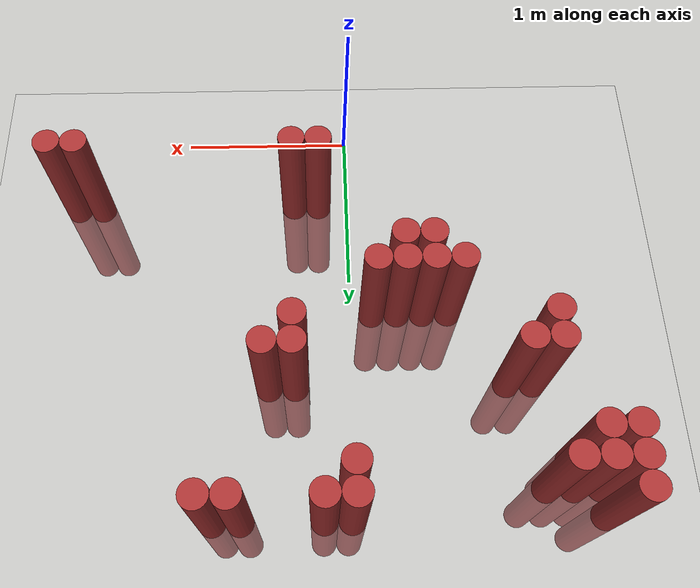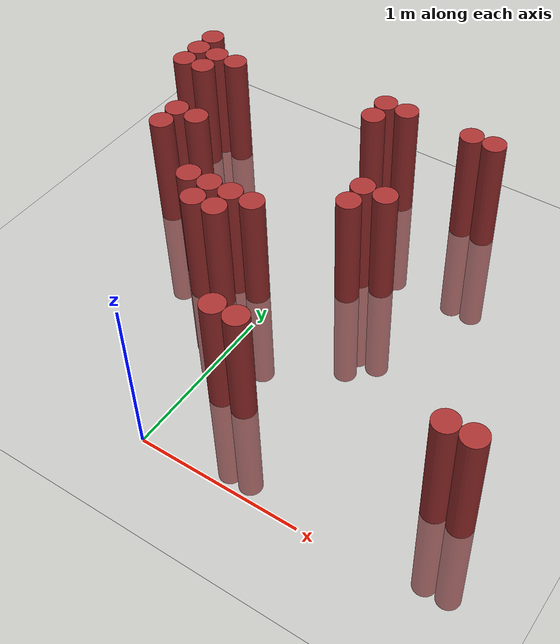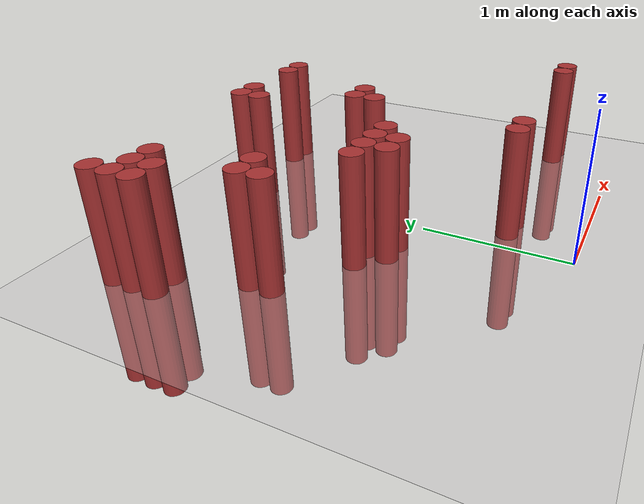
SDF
<sdf version="1.6">
 <world name="default">
  <model name="ground_plane">
   <static>1</static>
   <link name="link">
    <collision name="collision">
     <geometry><plane><normal>0 0 1</normal><size>100 100</size></plane></geometry>
     <surface><friction><ode><mu>100</mu><mu2>50</mu2></ode></friction></surface>
    </collision>
    <visual name="visual">
     <cast_shadows>0</cast_shadows>
     <geometry><plane><normal>0 0 1</normal><size>100 100</size></plane></geometry>
     <material>
      <script><uri>file://media/materials/scripts/gazebo.material</uri><name>Gazebo/Grey</name></script>
     </material>
    </visual>
   </link>
  </model>
  <model name="unit_cylinder_155">
   <static>1</static>
   <pose>-1.325000 2.125000 0.000000 0.000000 0.000000 0.000000</pose>
   <link name="link">
    <inertial>
     <mass>1</mass>
     <inertia><ixx>0.145833</ixx><ixy>0</ixy><ixz>0</ixz><iyy>0.145833</iyy><iyz>0</iyz><izz>0.125</izz></inertia>
    </inertial>
    <collision name="collision">
     <geometry><cylinder><radius>0.075000</radius><length>1.5</length></cylinder></geometry>
    </collision>
    <visual name="visual">
     <geometry><cylinder><radius>0.075000</radius><length>1.5</length></cylinder></geometry>
     <material>
      <ambient>0.648000 0.192000 0.192000 1</ambient>
      <diffuse>0.648000 0.192000 0.192000 1</diffuse>
     </material>
     <material>
      <script><name>Gazebo/Grey</name><uri>file://media/materials/scripts/gazebo.material</uri></script>
     </material>
    </visual>
   </link>
  </model>
  <model name="unit_cylinder_156">
   <static>1</static>
   <pose>-1.325000 2.275000 0.000000 0.000000 0.000000 0.000000</pose>
   <link name="link">
    <inertial>
     <mass>1</mass>
     <inertia><ixx>0.145833</ixx><ixy>0</ixy><ixz>0</ixz><iyy>0.145833</iyy><iyz>0</iyz><izz>0.125</izz></inertia>
    </inertial>
    <collision name="collision">
     <geometry><cylinder><radius>0.075000</radius><length>1.5</length></cylinder></geometry>
    </collision>
    <visual name="visual">
     <geometry><cylinder><radius>0.075000</radius><length>1.5</length></cylinder></geometry>
     <material>
      <ambient>0.648000 0.192000 0.192000 1</ambient>
      <diffuse>0.648000 0.192000 0.192000 1</diffuse>
     </material>
     <material>
      <script><name>Gazebo/Grey</name><uri>file://media/materials/scripts/gazebo.material</uri></script>
     </material>
    </visual>
   </link>
  </model>
  <model name="unit_cylinder_157">
   <static>1</static>
   <pose>-1.325000 2.425000 0.000000 0.000000 0.000000 0.000000</pose>
   <link name="link">
    <inertial>
     <mass>1</mass>
     <inertia><ixx>0.145833</ixx><ixy>0</ixy><ixz>0</ixz><iyy>0.145833</iyy><iyz>0</iyz><izz>0.125</izz></inertia>
    </inertial>
    <collision name="collision">
     <geometry><cylinder><radius>0.075000</radius><length>1.5</length></cylinder></geometry>
    </collision>
    <visual name="visual">
     <geometry><cylinder><radius>0.075000</radius><length>1.5</length></cylinder></geometry>
     <material>
      <ambient>0.648000 0.192000 0.192000 1</ambient>
      <diffuse>0.648000 0.192000 0.192000 1</diffuse>
     </material>
     <material>
      <script><name>Gazebo/Grey</name><uri>file://media/materials/scripts/gazebo.material</uri></script>
     </material>
    </visual>
   </link>
  </model>
  <model name="unit_cylinder_160">
   <static>1</static>
   <pose>-1.175000 2.125000 0.000000 0.000000 0.000000 0.000000</pose>
   <link name="link">
    <inertial>
     <mass>1</mass>
     <inertia><ixx>0.145833</ixx><ixy>0</ixy><ixz>0</ixz><iyy>0.145833</iyy><iyz>0</iyz><izz>0.125</izz></inertia>
    </inertial>
    <collision name="collision">
     <geometry><cylinder><radius>0.075000</radius><length>1.5</length></cylinder></geometry>
    </collision>
    <visual name="visual">
     <geometry><cylinder><radius>0.075000</radius><length>1.5</length></cylinder></geometry>
     <material>
      <ambient>0.648000 0.192000 0.192000 1</ambient>
      <diffuse>0.648000 0.192000 0.192000 1</diffuse>
     </material>
     <material>
      <script><name>Gazebo/Grey</name><uri>file://media/materials/scripts/gazebo.material</uri></script>
     </material>
    </visual>
   </link>
  </model>
  <model name="unit_cylinder_161">
   <static>1</static>
   <pose>-1.175000 2.275000 0.000000 0.000000 0.000000 0.000000</pose>
   <link name="link">
    <inertial>
     <mass>1</mass>
     <inertia><ixx>0.145833</ixx><ixy>0</ixy><ixz>0</ixz><iyy>0.145833</iyy><iyz>0</iyz><izz>0.125</izz></inertia>
    </inertial>
    <collision name="collision">
     <geometry><cylinder><radius>0.075000</radius><length>1.5</length></cylinder></geometry>
    </collision>
    <visual name="visual">
     <geometry><cylinder><radius>0.075000</radius><length>1.5</length></cylinder></geometry>
     <material>
      <ambient>0.648000 0.192000 0.192000 1</ambient>
      <diffuse>0.648000 0.192000 0.192000 1</diffuse>
     </material>
     <material>
      <script><name>Gazebo/Grey</name><uri>file://media/materials/scripts/gazebo.material</uri></script>
     </material>
    </visual>
   </link>
  </model>
  <model name="unit_cylinder_168">
   <static>1</static>
   <pose>-1.025000 1.525000 0.000000 0.000000 0.000000 0.000000</pose>
   <link name="link">
    <inertial>
     <mass>1</mass>
     <inertia><ixx>0.145833</ixx><ixy>0</ixy><ixz>0</ixz><iyy>0.145833</iyy><iyz>0</iyz><izz>0.125</izz></inertia>
    </inertial>
    <collision name="collision">
     <geometry><cylinder><radius>0.075000</radius><length>1.5</length></cylinder></geometry>
    </collision>
    <visual name="visual">
     <geometry><cylinder><radius>0.075000</radius><length>1.5</length></cylinder></geometry>
     <material>
      <ambient>0.648000 0.192000 0.192000 1</ambient>
      <diffuse>0.648000 0.192000 0.192000 1</diffuse>
     </material>
     <material>
      <script><name>Gazebo/Grey</name><uri>file://media/materials/scripts/gazebo.material</uri></script>
     </material>
    </visual>
   </link>
  </model>
  <model name="unit_cylinder_169">
   <static>1</static>
   <pose>-1.025000 1.675000 0.000000 0.000000 0.000000 0.000000</pose>
   <link name="link">
    <inertial>
     <mass>1</mass>
     <inertia><ixx>0.145833</ixx><ixy>0</ixy><ixz>0</ixz><iyy>0.145833</iyy><iyz>0</iyz><izz>0.125</izz></inertia>
    </inertial>
    <collision name="collision">
     <geometry><cylinder><radius>0.075000</radius><length>1.5</length></cylinder></geometry>
    </collision>
    <visual name="visual">
     <geometry><cylinder><radius>0.075000</radius><length>1.5</length></cylinder></geometry>
     <material>
      <ambient>0.648000 0.192000 0.192000 1</ambient>
      <diffuse>0.648000 0.192000 0.192000 1</diffuse>
     </material>
     <material>
      <script><name>Gazebo/Grey</name><uri>file://media/materials/scripts/gazebo.material</uri></script>
     </material>
    </visual>
   </link>
  </model>
  <model name="unit_cylinder_170">
   <static>1</static>
   <pose>-1.025000 2.275000 0.000000 0.000000 0.000000 0.000000</pose>
   <link name="link">
    <inertial>
     <mass>1</mass>
     <inertia><ixx>0.145833</ixx><ixy>0</ixy><ixz>0</ixz><iyy>0.145833</iyy><iyz>0</iyz><izz>0.125</izz></inertia>
    </inertial>
    <collision name="collision">
     <geometry><cylinder><radius>0.075000</radius><length>1.5</length></cylinder></geometry>
    </collision>
    <visual name="visual">
     <geometry><cylinder><radius>0.075000</radius><length>1.5</length></cylinder></geometry>
     <material>
      <ambient>0.648000 0.192000 0.192000 1</ambient>
      <diffuse>0.648000 0.192000 0.192000 1</diffuse>
     </material>
     <material>
      <script><name>Gazebo/Grey</name><uri>file://media/materials/scripts/gazebo.material</uri></script>
     </material>
    </visual>
   </link>
  </model>
  <model name="unit_cylinder_177">
   <static>1</static>
   <pose>-0.875000 1.675000 0.000000 0.000000 0.000000 0.000000</pose>
   <link name="link">
    <inertial>
     <mass>1</mass>
     <inertia><ixx>0.145833</ixx><ixy>0</ixy><ixz>0</ixz><iyy>0.145833</iyy><iyz>0</iyz><izz>0.125</izz></inertia>
    </inertial>
    <collision name="collision">
     <geometry><cylinder><radius>0.075000</radius><length>1.5</length></cylinder></geometry>
    </collision>
    <visual name="visual">
     <geometry><cylinder><radius>0.075000</radius><length>1.5</length></cylinder></geometry>
     <material>
      <ambient>0.648000 0.192000 0.192000 1</ambient>
      <diffuse>0.648000 0.192000 0.192000 1</diffuse>
     </material>
     <material>
      <script><name>Gazebo/Grey</name><uri>file://media/materials/scripts/gazebo.material</uri></script>
     </material>
    </visual>
   </link>
  </model>
  <model name="unit_cylinder_180">
   <static>1</static>
   <pose>-0.575000 1.225000 0.000000 0.000000 0.000000 0.000000</pose>
   <link name="link">
    <inertial>
     <mass>1</mass>
     <inertia><ixx>0.145833</ixx><ixy>0</ixy><ixz>0</ixz><iyy>0.145833</iyy><iyz>0</iyz><izz>0.125</izz></inertia>
    </inertial>
    <collision name="collision">
     <geometry><cylinder><radius>0.075000</radius><length>1.5</length></cylinder></geometry>
    </collision>
    <visual name="visual">
     <geometry><cylinder><radius>0.075000</radius><length>1.5</length></cylinder></geometry>
     <material>
      <ambient>0.648000 0.192000 0.192000 1</ambient>
      <diffuse>0.648000 0.192000 0.192000 1</diffuse>
     </material>
     <material>
      <script><name>Gazebo/Grey</name><uri>file://media/materials/scripts/gazebo.material</uri></script>
     </material>
    </visual>
   </link>
  </model>
  <model name="unit_cylinder_181">
   <static>1</static>
   <pose>-0.425000 1.075000 0.000000 0.000000 0.000000 0.000000</pose>
   <link name="link">
    <inertial>
     <mass>1</mass>
     <inertia><ixx>0.145833</ixx><ixy>0</ixy><ixz>0</ixz><iyy>0.145833</iyy><iyz>0</iyz><izz>0.125</izz></inertia>
    </inertial>
    <collision name="collision">
     <geometry><cylinder><radius>0.075000</radius><length>1.5</length></cylinder></geometry>
    </collision>
    <visual name="visual">
     <geometry><cylinder><radius>0.075000</radius><length>1.5</length></cylinder></geometry>
     <material>
      <ambient>0.648000 0.192000 0.192000 1</ambient>
      <diffuse>0.648000 0.192000 0.192000 1</diffuse>
     </material>
     <material>
      <script><name>Gazebo/Grey</name><uri>file://media/materials/scripts/gazebo.material</uri></script>
     </material>
    </visual>
   </link>
  </model>
  <model name="unit_cylinder_182">
   <static>1</static>
   <pose>-0.425000 1.225000 0.000000 0.000000 0.000000 0.000000</pose>
   <link name="link">
    <inertial>
     <mass>1</mass>
     <inertia><ixx>0.145833</ixx><ixy>0</ixy><ixz>0</ixz><iyy>0.145833</iyy><iyz>0</iyz><izz>0.125</izz></inertia>
    </inertial>
    <collision name="collision">
     <geometry><cylinder><radius>0.075000</radius><length>1.5</length></cylinder></geometry>
    </collision>
    <visual name="visual">
     <geometry><cylinder><radius>0.075000</radius><length>1.5</length></cylinder></geometry>
     <material>
      <ambient>0.648000 0.192000 0.192000 1</ambient>
      <diffuse>0.648000 0.192000 0.192000 1</diffuse>
     </material>
     <material>
      <script><name>Gazebo/Grey</name><uri>file://media/materials/scripts/gazebo.material</uri></script>
     </material>
    </visual>
   </link>
  </model>
  <model name="unit_cylinder_184">
   <static>1</static>
   <pose>-0.275000 1.075000 0.000000 0.000000 0.000000 0.000000</pose>
   <link name="link">
    <inertial>
     <mass>1</mass>
     <inertia><ixx>0.145833</ixx><ixy>0</ixy><ixz>0</ixz><iyy>0.145833</iyy><iyz>0</iyz><izz>0.125</izz></inertia>
    </inertial>
    <collision name="collision">
     <geometry><cylinder><radius>0.075000</radius><length>1.5</length></cylinder></geometry>
    </collision>
    <visual name="visual">
     <geometry><cylinder><radius>0.075000</radius><length>1.5</length></cylinder></geometry>
     <material>
      <ambient>0.648000 0.192000 0.192000 1</ambient>
      <diffuse>0.648000 0.192000 0.192000 1</diffuse>
     </material>
     <material>
      <script><name>Gazebo/Grey</name><uri>file://media/materials/scripts/gazebo.material</uri></script>
     </material>
    </visual>
   </link>
  </model>
  <model name="unit_cylinder_185">
   <static>1</static>
   <pose>-0.275000 1.225000 0.000000 0.000000 0.000000 0.000000</pose>
   <link name="link">
    <inertial>
     <mass>1</mass>
     <inertia><ixx>0.145833</ixx><ixy>0</ixy><ixz>0</ixz><iyy>0.145833</iyy><iyz>0</iyz><izz>0.125</izz></inertia>
    </inertial>
    <collision name="collision">
     <geometry><cylinder><radius>0.075000</radius><length>1.5</length></cylinder></geometry>
    </collision>
    <visual name="visual">
     <geometry><cylinder><radius>0.075000</radius><length>1.5</length></cylinder></geometry>
     <material>
      <ambient>0.648000 0.192000 0.192000 1</ambient>
      <diffuse>0.648000 0.192000 0.192000 1</diffuse>
     </material>
     <material>
      <script><name>Gazebo/Grey</name><uri>file://media/materials/scripts/gazebo.material</uri></script>
     </material>
    </visual>
   </link>
  </model>
  <model name="unit_cylinder_188">
   <static>1</static>
   <pose>-0.125000 1.225000 0.000000 0.000000 0.000000 0.000000</pose>
   <link name="link">
    <inertial>
     <mass>1</mass>
     <inertia><ixx>0.145833</ixx><ixy>0</ixy><ixz>0</ixz><iyy>0.145833</iyy><iyz>0</iyz><izz>0.125</izz></inertia>
    </inertial>
    <collision name="collision">
     <geometry><cylinder><radius>0.075000</radius><length>1.5</length></cylinder></geometry>
    </collision>
    <visual name="visual">
     <geometry><cylinder><radius>0.075000</radius><length>1.5</length></cylinder></geometry>
     <material>
      <ambient>0.648000 0.192000 0.192000 1</ambient>
      <diffuse>0.648000 0.192000 0.192000 1</diffuse>
     </material>
     <material>
      <script><name>Gazebo/Grey</name><uri>file://media/materials/scripts/gazebo.material</uri></script>
     </material>
    </visual>
   </link>
  </model>
  <model name="unit_cylinder_193">
   <static>1</static>
   <pose>0.025000 2.275000 0.000000 0.000000 0.000000 0.000000</pose>
   <link name="link">
    <inertial>
     <mass>1</mass>
     <inertia><ixx>0.145833</ixx><ixy>0</ixy><ixz>0</ixz><iyy>0.145833</iyy><iyz>0</iyz><izz>0.125</izz></inertia>
    </inertial>
    <collision name="collision">
     <geometry><cylinder><radius>0.075000</radius><length>1.5</length></cylinder></geometry>
    </collision>
    <visual name="visual">
     <geometry><cylinder><radius>0.075000</radius><length>1.5</length></cylinder></geometry>
     <material>
      <ambient>0.648000 0.192000 0.192000 1</ambient>
      <diffuse>0.648000 0.192000 0.192000 1</diffuse>
     </material>
     <material>
      <script><name>Gazebo/Grey</name><uri>file://media/materials/scripts/gazebo.material</uri></script>
     </material>
    </visual>
   </link>
  </model>
  <model name="unit_cylinder_194">
   <static>1</static>
   <pose>0.025000 2.425000 0.000000 0.000000 0.000000 0.000000</pose>
   <link name="link">
    <inertial>
     <mass>1</mass>
     <inertia><ixx>0.145833</ixx><ixy>0</ixy><ixz>0</ixz><iyy>0.145833</iyy><iyz>0</iyz><izz>0.125</izz></inertia>
    </inertial>
    <collision name="collision">
     <geometry><cylinder><radius>0.075000</radius><length>1.5</length></cylinder></geometry>
    </collision>
    <visual name="visual">
     <geometry><cylinder><radius>0.075000</radius><length>1.5</length></cylinder></geometry>
     <material>
      <ambient>0.648000 0.192000 0.192000 1</ambient>
      <diffuse>0.648000 0.192000 0.192000 1</diffuse>
     </material>
     <material>
      <script><name>Gazebo/Grey</name><uri>file://media/materials/scripts/gazebo.material</uri></script>
     </material>
    </visual>
   </link>
  </model>
  <model name="unit_cylinder_198">
   <static>1</static>
   <pose>0.175000 0.475000 0.000000 0.000000 0.000000 0.000000</pose>
   <link name="link">
    <inertial>
     <mass>1</mass>
     <inertia><ixx>0.145833</ixx><ixy>0</ixy><ixz>0</ixz><iyy>0.145833</iyy><iyz>0</iyz><izz>0.125</izz></inertia>
    </inertial>
    <collision name="collision">
     <geometry><cylinder><radius>0.075000</radius><length>1.5</length></cylinder></geometry>
    </collision>
    <visual name="visual">
     <geometry><cylinder><radius>0.075000</radius><length>1.5</length></cylinder></geometry>
     <material>
      <ambient>0.648000 0.192000 0.192000 1</ambient>
      <diffuse>0.648000 0.192000 0.192000 1</diffuse>
     </material>
     <material>
      <script><name>Gazebo/Grey</name><uri>file://media/materials/scripts/gazebo.material</uri></script>
     </material>
    </visual>
   </link>
  </model>
  <model name="unit_cylinder_199">
   <static>1</static>
   <pose>0.175000 2.425000 0.000000 0.000000 0.000000 0.000000</pose>
   <link name="link">
    <inertial>
     <mass>1</mass>
     <inertia><ixx>0.145833</ixx><ixy>0</ixy><ixz>0</ixz><iyy>0.145833</iyy><iyz>0</iyz><izz>0.125</izz></inertia>
    </inertial>
    <collision name="collision">
     <geometry><cylinder><radius>0.075000</radius><length>1.5</length></cylinder></geometry>
    </collision>
    <visual name="visual">
     <geometry><cylinder><radius>0.075000</radius><length>1.5</length></cylinder></geometry>
     <material>
      <ambient>0.648000 0.192000 0.192000 1</ambient>
      <diffuse>0.648000 0.192000 0.192000 1</diffuse>
     </material>
     <material>
      <script><name>Gazebo/Grey</name><uri>file://media/materials/scripts/gazebo.material</uri></script>
     </material>
    </visual>
   </link>
  </model>
  <model name="unit_cylinder_200">
   <static>1</static>
   <pose>0.325000 0.475000 0.000000 0.000000 0.000000 0.000000</pose>
   <link name="link">
    <inertial>
     <mass>1</mass>
     <inertia><ixx>0.145833</ixx><ixy>0</ixy><ixz>0</ixz><iyy>0.145833</iyy><iyz>0</iyz><izz>0.125</izz></inertia>
    </inertial>
    <collision name="collision">
     <geometry><cylinder><radius>0.075000</radius><length>1.5</length></cylinder></geometry>
    </collision>
    <visual name="visual">
     <geometry><cylinder><radius>0.075000</radius><length>1.5</length></cylinder></geometry>
     <material>
      <ambient>0.648000 0.192000 0.192000 1</ambient>
      <diffuse>0.648000 0.192000 0.192000 1</diffuse>
     </material>
     <material>
      <script><name>Gazebo/Grey</name><uri>file://media/materials/scripts/gazebo.material</uri></script>
     </material>
    </visual>
   </link>
  </model>
  <model name="unit_cylinder_201">
   <static>1</static>
   <pose>0.325000 1.525000 0.000000 0.000000 0.000000 0.000000</pose>
   <link name="link">
    <inertial>
     <mass>1</mass>
     <inertia><ixx>0.145833</ixx><ixy>0</ixy><ixz>0</ixz><iyy>0.145833</iyy><iyz>0</iyz><izz>0.125</izz></inertia>
    </inertial>
    <collision name="collision">
     <geometry><cylinder><radius>0.075000</radius><length>1.5</length></cylinder></geometry>
    </collision>
    <visual name="visual">
     <geometry><cylinder><radius>0.075000</radius><length>1.5</length></cylinder></geometry>
     <material>
      <ambient>0.648000 0.192000 0.192000 1</ambient>
      <diffuse>0.648000 0.192000 0.192000 1</diffuse>
     </material>
     <material>
      <script><name>Gazebo/Grey</name><uri>file://media/materials/scripts/gazebo.material</uri></script>
     </material>
    </visual>
   </link>
  </model>
  <model name="unit_cylinder_202">
   <static>1</static>
   <pose>0.325000 1.675000 0.000000 0.000000 0.000000 0.000000</pose>
   <link name="link">
    <inertial>
     <mass>1</mass>
     <inertia><ixx>0.145833</ixx><ixy>0</ixy><ixz>0</ixz><iyy>0.145833</iyy><iyz>0</iyz><izz>0.125</izz></inertia>
    </inertial>
    <collision name="collision">
     <geometry><cylinder><radius>0.075000</radius><length>1.5</length></cylinder></geometry>
    </collision>
    <visual name="visual">
     <geometry><cylinder><radius>0.075000</radius><length>1.5</length></cylinder></geometry>
     <material>
      <ambient>0.648000 0.192000 0.192000 1</ambient>
      <diffuse>0.648000 0.192000 0.192000 1</diffuse>
     </material>
     <material>
      <script><name>Gazebo/Grey</name><uri>file://media/materials/scripts/gazebo.material</uri></script>
     </material>
    </visual>
   </link>
  </model>
  <model name="unit_cylinder_203">
   <static>1</static>
   <pose>0.475000 1.675000 0.000000 0.000000 0.000000 0.000000</pose>
   <link name="link">
    <inertial>
     <mass>1</mass>
     <inertia><ixx>0.145833</ixx><ixy>0</ixy><ixz>0</ixz><iyy>0.145833</iyy><iyz>0</iyz><izz>0.125</izz></inertia>
    </inertial>
    <collision name="collision">
     <geometry><cylinder><radius>0.075000</radius><length>1.5</length></cylinder></geometry>
    </collision>
    <visual name="visual">
     <geometry><cylinder><radius>0.075000</radius><length>1.5</length></cylinder></geometry>
     <material>
      <ambient>0.648000 0.192000 0.192000 1</ambient>
      <diffuse>0.648000 0.192000 0.192000 1</diffuse>
     </material>
     <material>
      <script><name>Gazebo/Grey</name><uri>file://media/materials/scripts/gazebo.material</uri></script>
     </material>
    </visual>
   </link>
  </model>
  <model name="unit_cylinder_204">
   <static>1</static>
   <pose>0.625000 2.425000 0.000000 0.000000 0.000000 0.000000</pose>
   <link name="link">
    <inertial>
     <mass>1</mass>
     <inertia><ixx>0.145833</ixx><ixy>0</ixy><ixz>0</ixz><iyy>0.145833</iyy><iyz>0</iyz><izz>0.125</izz></inertia>
    </inertial>
    <collision name="collision">
     <geometry><cylinder><radius>0.075000</radius><length>1.5</length></cylinder></geometry>
    </collision>
    <visual name="visual">
     <geometry><cylinder><radius>0.075000</radius><length>1.5</length></cylinder></geometry>
     <material>
      <ambient>0.648000 0.192000 0.192000 1</ambient>
      <diffuse>0.648000 0.192000 0.192000 1</diffuse>
     </material>
     <material>
      <script><name>Gazebo/Grey</name><uri>file://media/materials/scripts/gazebo.material</uri></script>
     </material>
    </visual>
   </link>
  </model>
  <model name="unit_cylinder_205">
   <static>1</static>
   <pose>0.775000 2.425000 0.000000 0.000000 0.000000 0.000000</pose>
   <link name="link">
    <inertial>
     <mass>1</mass>
     <inertia><ixx>0.145833</ixx><ixy>0</ixy><ixz>0</ixz><iyy>0.145833</iyy><iyz>0</iyz><izz>0.125</izz></inertia>
    </inertial>
    <collision name="collision">
     <geometry><cylinder><radius>0.075000</radius><length>1.5</length></cylinder></geometry>
    </collision>
    <visual name="visual">
     <geometry><cylinder><radius>0.075000</radius><length>1.5</length></cylinder></geometry>
     <material>
      <ambient>0.648000 0.192000 0.192000 1</ambient>
      <diffuse>0.648000 0.192000 0.192000 1</diffuse>
     </material>
     <material>
      <script><name>Gazebo/Grey</name><uri>file://media/materials/scripts/gazebo.material</uri></script>
     </material>
    </visual>
   </link>
  </model>
  <model name="unit_cylinder_213">
   <static>1</static>
   <pose>1.525000 0.475000 0.000000 0.000000 0.000000 0.000000</pose>
   <link name="link">
    <inertial>
     <mass>1</mass>
     <inertia><ixx>0.145833</ixx><ixy>0</ixy><ixz>0</ixz><iyy>0.145833</iyy><iyz>0</iyz><izz>0.125</izz></inertia>
    </inertial>
    <collision name="collision">
     <geometry><cylinder><radius>0.075000</radius><length>1.5</length></cylinder></geometry>
    </collision>
    <visual name="visual">
     <geometry><cylinder><radius>0.075000</radius><length>1.5</length></cylinder></geometry>
     <material>
      <ambient>0.648000 0.192000 0.192000 1</ambient>
      <diffuse>0.648000 0.192000 0.192000 1</diffuse>
     </material>
     <material>
      <script><name>Gazebo/Grey</name><uri>file://media/materials/scripts/gazebo.material</uri></script>
     </material>
    </visual>
   </link>
  </model>
  <model name="unit_cylinder_214">
   <static>1</static>
   <pose>1.675000 0.475000 0.000000 0.000000 0.000000 0.000000</pose>
   <link name="link">
    <inertial>
     <mass>1</mass>
     <inertia><ixx>0.145833</ixx><ixy>0</ixy><ixz>0</ixz><iyy>0.145833</iyy><iyz>0</iyz><izz>0.125</izz></inertia>
    </inertial>
    <collision name="collision">
     <geometry><cylinder><radius>0.075000</radius><length>1.5</length></cylinder></geometry>
    </collision>
    <visual name="visual">
     <geometry><cylinder><radius>0.075000</radius><length>1.5</length></cylinder></geometry>
     <material>
      <ambient>0.648000 0.192000 0.192000 1</ambient>
      <diffuse>0.648000 0.192000 0.192000 1</diffuse>
     </material>
     <material>
      <script><name>Gazebo/Grey</name><uri>file://media/materials/scripts/gazebo.material</uri></script>
     </material>
    </visual>
   </link>
  </model>
 </world>
</sdf>
